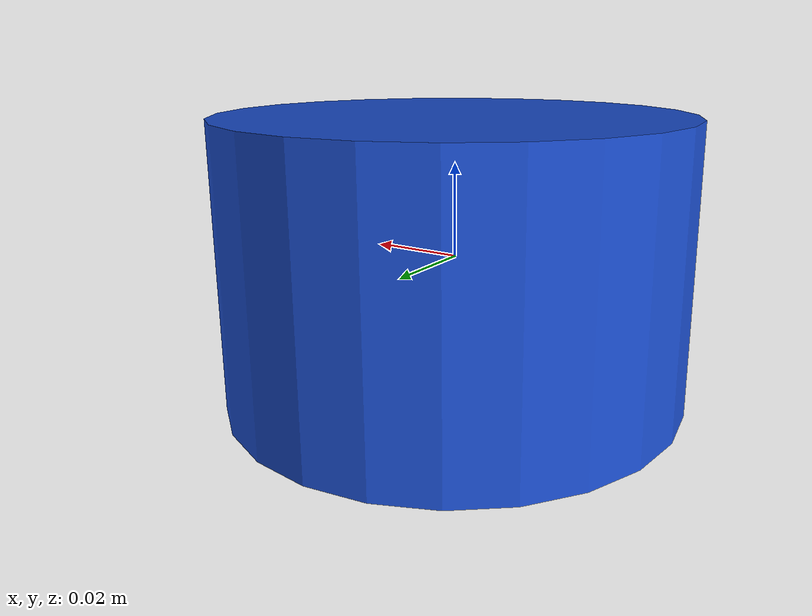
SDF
<?xml version="1.0"?>
<sdf version="1.8">
  <model name="paddle">
    <link name="paddle_link">

      <inertial>
        <mass>0.3</mass>
        <inertia>
          <ixx>0.00027</ixx>
          <iyy>0.00027</iyy>
          <izz>0.00036</izz>
          <ixy>0</ixy>
          <ixz>0</ixz>
          <iyz>0</iyz>
        </inertia>
      </inertial>

      <collision name="paddle_collision">
        <geometry>
          <cylinder><radius>0.049</radius><length>0.06</length></cylinder>
        </geometry>
        <surface>
          <friction>
            <ode><mu>0.01</mu><mu2>0.01</mu2></ode>
          </friction>
          <bounce>
            <restitution_coefficient>0.6</restitution_coefficient>
            <threshold>0.01</threshold>
          </bounce>
        </surface>
      </collision>

      <visual name="paddle_visual">
        <geometry>
          <cylinder><radius>0.049</radius><length>0.06</length></cylinder>
        </geometry>
        <material>
          <ambient>0.1 0.3 0.8 1</ambient>
          <diffuse>0.1 0.3 0.8 1</diffuse>
          <specular>0.4 0.4 0.4 1</specular>
        </material>
      </visual>

    </link>
  </model>
</sdf>
